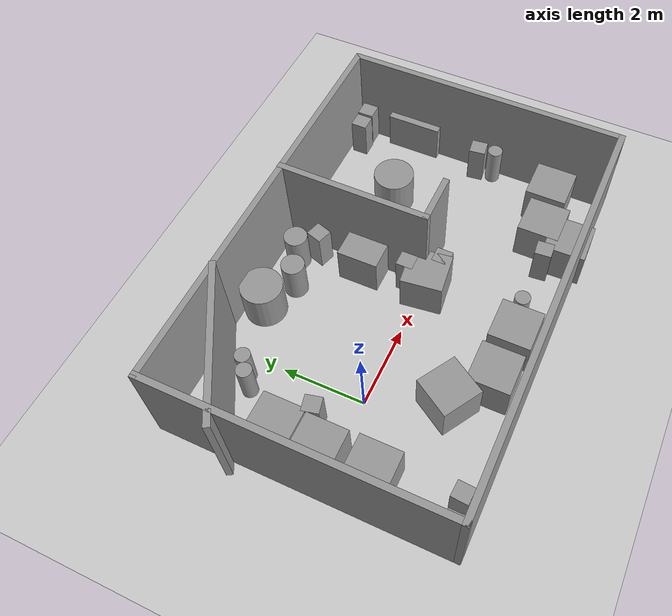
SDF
<sdf version="1.7">
 <world name="default">
  <light name="sun" type="directional">
   <pose>0 0 10 0 -0 0</pose>
   <diffuse>0.8 0.8 0.8 1</diffuse>
   <specular>0.2 0.2 0.2 1</specular>
   <attenuation>
    <range>1000</range>
    <constant>0.9</constant>
    <linear>0.01</linear>
    <quadratic>0.001</quadratic>
   </attenuation>
   <direction>-0.5 0.1 -0.9</direction>
   <spot><inner_angle>0</inner_angle><outer_angle>0</outer_angle><falloff>0</falloff></spot>
  </light>
  <model name="ground_plane">
   <static>1</static>
   <link name="link">
    <collision name="collision">
     <geometry><plane><normal>0 0 1</normal><size>100 100</size></plane></geometry>
     <surface>
      <contact><collide_bitmask>65535</collide_bitmask></contact>
      <friction><ode><mu>100</mu><mu2>50</mu2></ode></friction>
     </surface>
    </collision>
    <visual name="visual">
     <cast_shadows>0</cast_shadows>
     <geometry><plane><normal>0 0 1</normal><size>100 100</size></plane></geometry>
     <material>
      <script><uri>file://media/materials/scripts/gazebo.material</uri><name>Gazebo/Grey</name></script>
     </material>
    </visual>
   </link>
  </model>
  <gravity>0 0 -9.8</gravity>
  <magnetic_field>6e-06 2.3e-05 -4.2e-05</magnetic_field>
  <atmosphere type="adiabatic"/>
  <physics type="ode">
   <max_step_size>0.001</max_step_size>
   <real_time_factor>1</real_time_factor>
   <real_time_update_rate>1000</real_time_update_rate>
  </physics>
  <scene><ambient>0.4 0.4 0.4 1</ambient><background>0.7 0.7 0.7 1</background><shadows>1</shadows></scene>
  <spherical_coordinates>
   <surface_model>EARTH_WGS84</surface_model>
   <latitude_deg>0</latitude_deg>
   <longitude_deg>0</longitude_deg>
   <elevation>0</elevation>
   <heading_deg>0</heading_deg>
  </spherical_coordinates>
  <model name="Untitled">
   <pose>2.50168 0.287359 0 0 -0 0</pose>
   <link name="Wall_17">
    <collision name="Wall_17_Collision">
     <geometry><box><size>10 0.15 2.5</size></box></geometry>
     <pose>0 0 1.25 0 -0 0</pose>
    </collision>
    <visual name="Wall_17_Visual">
     <pose>0 0 1.25 0 -0 0</pose>
     <geometry><box><size>10 0.15 2.5</size></box></geometry>
     <material>
      <script><uri>file://media/materials/scripts/gazebo.material</uri><name>Gazebo/Grey</name></script>
      <ambient>1 1 1 1</ambient>
     </material>
     <meta><layer>0</layer></meta>
    </visual>
    <pose>0.158158 -3.43569 0 0 -0 0</pose>
   </link>
   <link name="Wall_20">
    <collision name="Wall_20_Collision">
     <geometry><box><size>7 0.15 2.5</size></box></geometry>
     <pose>0 0 1.25 0 -0 0</pose>
    </collision>
    <visual name="Wall_20_Visual">
     <pose>0 0 1.25 0 -0 0</pose>
     <geometry><box><size>7 0.15 2.5</size></box></geometry>
     <material>
      <script><uri>file://media/materials/scripts/gazebo.material</uri><name>Gazebo/Grey</name></script>
      <ambient>1 1 1 1</ambient>
     </material>
     <meta><layer>0</layer></meta>
    </visual>
    <pose>-4.76684 -0.010695 0 0 -0 1.5708</pose>
   </link>
   <link name="Wall_21">
    <collision name="Wall_21_Collision">
     <geometry><box><size>10 0.15 2.5</size></box></geometry>
     <pose>0 0 1.25 0 -0 0</pose>
    </collision>
    <visual name="Wall_21_Visual">
     <pose>0 0 1.25 0 -0 0</pose>
     <geometry><box><size>10 0.15 2.5</size></box></geometry>
     <material>
      <script><uri>file://media/materials/scripts/gazebo.material</uri><name>Gazebo/Grey</name></script>
      <ambient>1 1 1 1</ambient>
     </material>
     <meta><layer>0</layer></meta>
    </visual>
    <pose>0.158158 3.41431 0 0 -0 0</pose>
   </link>
   <link name="Wall_22">
    <collision name="Wall_22_Collision">
     <geometry><box><size>7 0.15 2.5</size></box></geometry>
     <pose>0 0 1.25 0 -0 0</pose>
    </collision>
    <visual name="Wall_22_Visual">
     <pose>0 0 1.25 0 -0 0</pose>
     <geometry><box><size>7 0.15 2.5</size></box></geometry>
     <material>
      <script><uri>file://media/materials/scripts/gazebo.material</uri><name>Gazebo/Grey</name></script>
      <ambient>1 1 1 1</ambient>
     </material>
     <meta><layer>0</layer></meta>
    </visual>
    <pose>5.08316 -0.010695 0 0 -0 -1.5708</pose>
   </link>
   <link name="Wall_27">
    <collision name="Wall_27_Collision">
     <geometry><box><size>3.75 0.15 2.5</size></box></geometry>
     <pose>0 0 1.25 0 -0 0</pose>
    </collision>
    <visual name="Wall_27_Visual">
     <pose>0 0 1.25 0 -0 0</pose>
     <geometry><box><size>3.75 0.15 2.5</size></box></geometry>
     <material>
      <script><uri>file://media/materials/scripts/gazebo.material</uri><name>Gazebo/Grey</name></script>
      <ambient>1 1 1 1</ambient>
     </material>
     <meta><layer>0</layer></meta>
    </visual>
    <pose>1.0429 1.62345 0 0 -0 -1.5708</pose>
   </link>
   <link name="Wall_28">
    <collision name="Wall_28_Collision">
     <geometry><box><size>1.25 0.15 2.5</size></box></geometry>
     <pose>0 0 1.25 0 -0 0</pose>
    </collision>
    <visual name="Wall_28_Visual">
     <pose>0 0 1.25 0 -0 0</pose>
     <geometry><box><size>1.25 0.15 2.5</size></box></geometry>
     <material>
      <script><uri>file://media/materials/scripts/gazebo.material</uri><name>Gazebo/Grey</name></script>
      <ambient>1 1 1 1</ambient>
     </material>
     <meta><layer>0</layer></meta>
    </visual>
    <pose>1.5929 -0.176548 0 0 -0 0</pose>
   </link>
   <link name="Wall_31">
    <collision name="Wall_31_Collision">
     <geometry><box><size>3.75 0.15 2.5</size></box></geometry>
     <pose>0 0 1.25 0 -0 0</pose>
    </collision>
    <visual name="Wall_31_Visual">
     <pose>0 0 1.25 0 -0 0</pose>
     <geometry><box><size>3.75 0.15 2.5</size></box></geometry>
     <material>
      <script><uri>file://media/materials/scripts/gazebo.material</uri><name>Gazebo/Grey</name></script>
      <ambient>1 1 1 1</ambient>
     </material>
     <meta><layer>0</layer></meta>
    </visual>
    <pose>-3.49686 2.50824 0 0 -0 -2.61799</pose>
   </link>
   <static>1</static>
  </model>
  <model name="unit_cylinder">
   <pose>5.54933 1.7972 0.499994 -3e-06 -2e-06 0</pose>
   <link name="link">
    <inertial>
     <mass>1</mass>
     <inertia><ixx>0.145833</ixx><ixy>0</ixy><ixz>0</ixz><iyy>0.145833</iyy><iyz>0</iyz><izz>0.125</izz></inertia>
    </inertial>
    <collision name="collision">
     <geometry><cylinder><radius>0.5</radius><length>1</length></cylinder></geometry>
    </collision>
    <visual name="visual">
     <geometry><cylinder><radius>0.5</radius><length>1</length></cylinder></geometry>
     <material>
      <script><name>Gazebo/Grey</name><uri>file://media/materials/scripts/gazebo.material</uri></script>
     </material>
    </visual>
   </link>
  </model>
  <model name="unit_box_0">
   <pose>-1.49088 1.31223 0.5 0 -0 5e-06</pose>
   <link name="link">
    <inertial>
     <mass>1</mass>
     <inertia>
      <ixx>0.166667</ixx>
      <ixy>0</ixy>
      <ixz>0</ixz>
      <iyy>0.166667</iyy>
      <iyz>0</iyz>
      <izz>0.166667</izz>
     </inertia>
    </inertial>
    <collision name="collision"><geometry><box><size>1 1 1</size></box></geometry></collision>
    <visual name="visual">
     <geometry><box><size>1 1 1</size></box></geometry>
     <material>
      <script><name>Gazebo/Grey</name><uri>file://media/materials/scripts/gazebo.material</uri></script>
     </material>
    </visual>
   </link>
  </model>
  <model name="unit_box_1">
   <pose>-1.54764 0.285463 0.499995 -1e-05 -0 2e-06</pose>
   <link name="link">
    <inertial>
     <mass>1</mass>
     <inertia>
      <ixx>0.166667</ixx>
      <ixy>0</ixy>
      <ixz>0</ixz>
      <iyy>0.166667</iyy>
      <iyz>0</iyz>
      <izz>0.166667</izz>
     </inertia>
    </inertial>
    <collision name="collision"><geometry><box><size>0.999999 1 1</size></box></geometry></collision>
    <visual name="visual">
     <geometry><box><size>0.999999 1 1</size></box></geometry>
     <material>
      <script><name>Gazebo/Grey</name><uri>file://media/materials/scripts/gazebo.material</uri></script>
     </material>
    </visual>
   </link>
  </model>
  <model name="unit_box_2">
   <pose>5.45674 -2.82159 0.49927 9e-06 0.000368 0.02352</pose>
   <link name="link">
    <inertial>
     <mass>1</mass>
     <inertia>
      <ixx>0.166667</ixx>
      <ixy>0</ixy>
      <ixz>0</ixz>
      <iyy>0.166667</iyy>
      <iyz>0</iyz>
      <izz>0.166667</izz>
     </inertia>
    </inertial>
    <collision name="collision"><geometry><box><size>0.999998 0.999997 1</size></box></geometry></collision>
    <visual name="visual">
     <geometry><box><size>0.999998 0.999997 1</size></box></geometry>
     <material>
      <script><name>Gazebo/Grey</name><uri>file://media/materials/scripts/gazebo.material</uri></script>
     </material>
    </visual>
   </link>
  </model>
  <model name="unit_cylinder_0">
   <pose>1.27187 3.17606 0.499999 1e-06 -1e-06 0</pose>
   <link name="link">
    <inertial>
     <mass>1</mass>
     <inertia><ixx>0.145833</ixx><ixy>0</ixy><ixz>0</ixz><iyy>0.145833</iyy><iyz>0</iyz><izz>0.125</izz></inertia>
    </inertial>
    <collision name="collision">
     <geometry><cylinder><radius>0.5</radius><length>1</length></cylinder></geometry>
    </collision>
    <visual name="visual">
     <geometry><cylinder><radius>0.5</radius><length>1</length></cylinder></geometry>
     <material>
      <script><name>Gazebo/Grey</name><uri>file://media/materials/scripts/gazebo.material</uri></script>
     </material>
    </visual>
   </link>
  </model>
  <model name="unit_box_3">
   <pose>3.24514 -0.082901 0.499999 -4e-06 -3e-06 0.12067</pose>
   <link name="link">
    <inertial>
     <mass>1</mass>
     <inertia>
      <ixx>0.166667</ixx>
      <ixy>0</ixy>
      <ixz>0</ixz>
      <iyy>0.166667</iyy>
      <iyz>0</iyz>
      <izz>0.166667</izz>
     </inertia>
    </inertial>
    <collision name="collision"><geometry><box><size>0.999999 0.999999 1</size></box></geometry></collision>
    <visual name="visual">
     <geometry><box><size>0.999999 0.999999 1</size></box></geometry>
     <material>
      <script><name>Gazebo/Grey</name><uri>file://media/materials/scripts/gazebo.material</uri></script>
     </material>
    </visual>
   </link>
  </model>
  <model name="unit_cylinder_0_clone">
   <pose>2.08333 2.80261 0.499997 1e-06 1e-06 0</pose>
   <link name="link">
    <inertial>
     <mass>1</mass>
     <inertia><ixx>0.145833</ixx><ixy>0</ixy><ixz>0</ixz><iyy>0.145833</iyy><iyz>0</iyz><izz>0.125</izz></inertia>
    </inertial>
    <collision name="collision">
     <geometry><cylinder><radius>0.28302</radius><length>1</length></cylinder></geometry>
    </collision>
    <visual name="visual">
     <geometry><cylinder><radius>0.28302</radius><length>1</length></cylinder></geometry>
     <material>
      <script><name>Gazebo/Grey</name><uri>file://media/materials/scripts/gazebo.material</uri></script>
     </material>
    </visual>
   </link>
  </model>
  <model name="unit_cylinder_0_clone_0">
   <pose>2.82257 3.12639 0.499999 0 -1e-06 0</pose>
   <link name="link">
    <inertial>
     <mass>1</mass>
     <inertia><ixx>0.145833</ixx><ixy>0</ixy><ixz>0</ixz><iyy>0.145833</iyy><iyz>0</iyz><izz>0.125</izz></inertia>
    </inertial>
    <collision name="collision">
     <geometry><cylinder><radius>0.28302</radius><length>1</length></cylinder></geometry>
    </collision>
    <visual name="visual">
     <geometry><cylinder><radius>0.28302</radius><length>1</length></cylinder></geometry>
     <material>
      <script><name>Gazebo/Grey</name><uri>file://media/materials/scripts/gazebo.material</uri></script>
     </material>
    </visual>
   </link>
  </model>
  <model name="unit_box">
   <pose>-1.51448 -0.926277 0.5 0 -0 0</pose>
   <link name="link">
    <inertial>
     <mass>1</mass>
     <inertia>
      <ixx>0.166667</ixx>
      <ixy>0</ixy>
      <ixz>0</ixz>
      <iyy>0.166667</iyy>
      <iyz>0</iyz>
      <izz>0.166667</izz>
     </inertia>
    </inertial>
    <collision name="collision"><geometry><box><size>1 0.999998 1</size></box></geometry></collision>
    <visual name="visual">
     <geometry><box><size>1 0.999998 1</size></box></geometry>
     <material>
      <script><name>Gazebo/Grey</name><uri>file://media/materials/scripts/gazebo.material</uri></script>
     </material>
    </visual>
   </link>
  </model>
  <model name="unit_box_4">
   <pose>6.88675 -1.89979 0.499995 0 -1e-05 0</pose>
   <link name="link">
    <inertial>
     <mass>1</mass>
     <inertia>
      <ixx>0.166667</ixx>
      <ixy>0</ixy>
      <ixz>0</ixz>
      <iyy>0.166667</iyy>
      <iyz>0</iyz>
      <izz>0.166667</izz>
     </inertia>
    </inertial>
    <collision name="collision"><geometry><box><size>1 0.999998 1</size></box></geometry></collision>
    <visual name="visual">
     <geometry><box><size>1 0.999998 1</size></box></geometry>
     <material>
      <script><name>Gazebo/Grey</name><uri>file://media/materials/scripts/gazebo.material</uri></script>
     </material>
    </visual>
   </link>
  </model>
  <model name="unit_box_5">
   <pose>5.74417 -2.0897 0.5 0 -0 3.2e-05</pose>
   <link name="link">
    <inertial>
     <mass>1</mass>
     <inertia>
      <ixx>0.166667</ixx>
      <ixy>0</ixy>
      <ixz>0</ixz>
      <iyy>0.166667</iyy>
      <iyz>0</iyz>
      <izz>0.166667</izz>
     </inertia>
    </inertial>
    <collision name="collision"><geometry><box><size>1 1 1</size></box></geometry></collision>
    <visual name="visual">
     <geometry><box><size>1 1 1</size></box></geometry>
     <material>
      <script><name>Gazebo/Grey</name><uri>file://media/materials/scripts/gazebo.material</uri></script>
     </material>
    </visual>
   </link>
  </model>
  <model name="unit_box_6">
   <pose>2.70314 -2.46942 0.499995 1e-05 -0 0</pose>
   <link name="link">
    <inertial>
     <mass>1</mass>
     <inertia>
      <ixx>0.166667</ixx>
      <ixy>0</ixy>
      <ixz>0</ixz>
      <iyy>0.166667</iyy>
      <iyz>0</iyz>
      <izz>0.166667</izz>
     </inertia>
    </inertial>
    <collision name="collision"><geometry><box><size>1 1 1</size></box></geometry></collision>
    <visual name="visual">
     <geometry><box><size>1 1 1</size></box></geometry>
     <material>
      <script><name>Gazebo/Grey</name><uri>file://media/materials/scripts/gazebo.material</uri></script>
     </material>
    </visual>
   </link>
  </model>
  <model name="unit_box_7">
   <pose>1.51914 -2.43077 0.5 0 -0 1e-05</pose>
   <link name="link">
    <inertial>
     <mass>1</mass>
     <inertia>
      <ixx>0.166667</ixx>
      <ixy>0</ixy>
      <ixz>0</ixz>
      <iyy>0.166667</iyy>
      <iyz>0</iyz>
      <izz>0.166667</izz>
     </inertia>
    </inertial>
    <collision name="collision"><geometry><box><size>1 0.999998 1</size></box></geometry></collision>
    <visual name="visual">
     <geometry><box><size>1 0.999998 1</size></box></geometry>
     <material>
      <script><name>Gazebo/Grey</name><uri>file://media/materials/scripts/gazebo.material</uri></script>
     </material>
    </visual>
   </link>
  </model>
  <model name="unit_box_8">
   <pose>0.706155 -1.69152 0.5 0 -0 -0.548094</pose>
   <link name="link">
    <inertial>
     <mass>1</mass>
     <inertia>
      <ixx>0.166667</ixx>
      <ixy>0</ixy>
      <ixz>0</ixz>
      <iyy>0.166667</iyy>
      <iyz>0</iyz>
      <izz>0.166667</izz>
     </inertia>
    </inertial>
    <collision name="collision"><geometry><box><size>1 1 1</size></box></geometry></collision>
    <visual name="visual">
     <geometry><box><size>1 1 1</size></box></geometry>
     <material>
      <script><name>Gazebo/Grey</name><uri>file://media/materials/scripts/gazebo.material</uri></script>
     </material>
    </visual>
   </link>
  </model>
  <model name="unit_box_3_clone">
   <pose>3.27733 0.432388 0.5 0 -0 -4e-06</pose>
   <link name="link">
    <inertial>
     <mass>1</mass>
     <inertia>
      <ixx>0.166667</ixx>
      <ixy>0</ixy>
      <ixz>0</ixz>
      <iyy>0.166667</iyy>
      <iyz>0</iyz>
      <izz>0.166667</izz>
     </inertia>
    </inertial>
    <collision name="collision"><geometry><box><size>0.384482 0.401706 1</size></box></geometry></collision>
    <visual name="visual">
     <geometry><box><size>0.384482 0.401706 1</size></box></geometry>
     <material>
      <script><name>Gazebo/Grey</name><uri>file://media/materials/scripts/gazebo.material</uri></script>
     </material>
    </visual>
   </link>
  </model>
  <model name="unit_box_3_clone_0">
   <pose>-1.88133 -2.84073 0.500001 2e-06 -1e-06 0.00017</pose>
   <link name="link">
    <inertial>
     <mass>1</mass>
     <inertia>
      <ixx>0.166667</ixx>
      <ixy>0</ixy>
      <ixz>0</ixz>
      <iyy>0.166667</iyy>
      <iyz>0</iyz>
      <izz>0.166667</izz>
     </inertia>
    </inertial>
    <collision name="collision"><geometry><box><size>0.384482 0.401706 1</size></box></geometry></collision>
    <visual name="visual">
     <geometry><box><size>0.384482 0.401706 1</size></box></geometry>
     <material>
      <script><name>Gazebo/Grey</name><uri>file://media/materials/scripts/gazebo.material</uri></script>
     </material>
    </visual>
   </link>
  </model>
  <model name="unit_box_3_clone_1">
   <pose>3.15 2.67126 0.500001 -2e-06 -1e-06 -0.30349</pose>
   <link name="link">
    <inertial>
     <mass>1</mass>
     <inertia>
      <ixx>0.166667</ixx>
      <ixy>0</ixy>
      <ixz>0</ixz>
      <iyy>0.166667</iyy>
      <iyz>0</iyz>
      <izz>0.166667</izz>
     </inertia>
    </inertial>
    <collision name="collision"><geometry><box><size>0.384482 0.401706 1</size></box></geometry></collision>
    <visual name="visual">
     <geometry><box><size>0.384482 0.401706 1</size></box></geometry>
     <material>
      <script><name>Gazebo/Grey</name><uri>file://media/materials/scripts/gazebo.material</uri></script>
     </material>
    </visual>
   </link>
  </model>
  <model name="unit_box_3_clone_2">
   <pose>4.90012 -2.38677 0.499999 2e-06 -3e-06 0.079478</pose>
   <link name="link">
    <inertial>
     <mass>1</mass>
     <inertia>
      <ixx>0.166667</ixx>
      <ixy>0</ixy>
      <ixz>0</ixz>
      <iyy>0.166667</iyy>
      <iyz>0</iyz>
      <izz>0.166667</izz>
     </inertia>
    </inertial>
    <collision name="collision"><geometry><box><size>0.384482 0.401706 1</size></box></geometry></collision>
    <visual name="visual">
     <geometry><box><size>0.384482 0.401706 1</size></box></geometry>
     <material>
      <script><name>Gazebo/Grey</name><uri>file://media/materials/scripts/gazebo.material</uri></script>
     </material>
    </visual>
   </link>
  </model>
  <model name="unit_box_3_clone_3">
   <pose>3.71912 -0.279151 0.500001 -1e-06 -2e-06 0.000185</pose>
   <link name="link">
    <inertial>
     <mass>1</mass>
     <inertia>
      <ixx>0.166667</ixx>
      <ixy>0</ixy>
      <ixz>0</ixz>
      <iyy>0.166667</iyy>
      <iyz>0</iyz>
      <izz>0.166667</izz>
     </inertia>
    </inertial>
    <collision name="collision"><geometry><box><size>0.384482 0.401706 1</size></box></geometry></collision>
    <visual name="visual">
     <geometry><box><size>0.384482 0.401706 1</size></box></geometry>
     <material>
      <script><name>Gazebo/Grey</name><uri>file://media/materials/scripts/gazebo.material</uri></script>
     </material>
    </visual>
   </link>
  </model>
  <model name="unit_box_3_clone_4">
   <pose>7.31761 3.3532 0.5 -0 -0 -4e-06</pose>
   <link name="link">
    <inertial>
     <mass>1</mass>
     <inertia>
      <ixx>0.166667</ixx>
      <ixy>0</ixy>
      <ixz>0</ixz>
      <iyy>0.166667</iyy>
      <iyz>0</iyz>
      <izz>0.166667</izz>
     </inertia>
    </inertial>
    <collision name="collision"><geometry><box><size>0.384482 0.401706 1</size></box></geometry></collision>
    <visual name="visual">
     <geometry><box><size>0.384482 0.401706 1</size></box></geometry>
     <material>
      <script><name>Gazebo/Grey</name><uri>file://media/materials/scripts/gazebo.material</uri></script>
     </material>
    </visual>
   </link>
  </model>
  <model name="unit_box_3_clone_5">
   <pose>6.87125 3.33086 0.500001 0 3e-06 0.000114</pose>
   <link name="link">
    <inertial>
     <mass>1</mass>
     <inertia>
      <ixx>0.166667</ixx>
      <ixy>0</ixy>
      <ixz>0</ixz>
      <iyy>0.166667</iyy>
      <iyz>0</iyz>
      <izz>0.166667</izz>
     </inertia>
    </inertial>
    <collision name="collision"><geometry><box><size>0.384482 0.401706 1</size></box></geometry></collision>
    <visual name="visual">
     <geometry><box><size>0.384482 0.401706 1</size></box></geometry>
     <material>
      <script><name>Gazebo/Grey</name><uri>file://media/materials/scripts/gazebo.material</uri></script>
     </material>
    </visual>
   </link>
  </model>
  <model name="unit_box_3_clone_6">
   <pose>3.92967 3.18179 0.499997 6e-06 -4e-06 0.000206</pose>
   <link name="link">
    <inertial>
     <mass>1</mass>
     <inertia>
      <ixx>0.166667</ixx>
      <ixy>0</ixy>
      <ixz>0</ixz>
      <iyy>0.166667</iyy>
      <iyz>0</iyz>
      <izz>0.166667</izz>
     </inertia>
    </inertial>
    <collision name="collision"><geometry><box><size>0.384482 0.401705 1</size></box></geometry></collision>
    <visual name="visual">
     <geometry><box><size>0.384482 0.401705 1</size></box></geometry>
     <material>
      <script><name>Gazebo/Grey</name><uri>file://media/materials/scripts/gazebo.material</uri></script>
     </material>
    </visual>
   </link>
  </model>
  <model name="unit_box_3_clone_7">
   <pose>-0.848155 0.755717 0.500001 2e-06 -1e-06 0.227242</pose>
   <link name="link">
    <inertial>
     <mass>1</mass>
     <inertia>
      <ixx>0.166667</ixx>
      <ixy>0</ixy>
      <ixz>0</ixz>
      <iyy>0.166667</iyy>
      <iyz>0</iyz>
      <izz>0.166667</izz>
     </inertia>
    </inertial>
    <collision name="collision"><geometry><box><size>0.384482 0.401706 1</size></box></geometry></collision>
    <visual name="visual">
     <geometry><box><size>0.384482 0.401706 1</size></box></geometry>
     <material>
      <script><name>Gazebo/Grey</name><uri>file://media/materials/scripts/gazebo.material</uri></script>
     </material>
    </visual>
   </link>
  </model>
  <model name="unit_box_3_clone_8">
   <pose>-1.29011 -2.79685 0.500001 -0 -3e-06 -0.060232</pose>
   <link name="link">
    <inertial>
     <mass>1</mass>
     <inertia>
      <ixx>0.166667</ixx>
      <ixy>0</ixy>
      <ixz>0</ixz>
      <iyy>0.166667</iyy>
      <iyz>0</iyz>
      <izz>0.166667</izz>
     </inertia>
    </inertial>
    <collision name="collision"><geometry><box><size>0.384482 0.401706 1</size></box></geometry></collision>
    <visual name="visual">
     <geometry><box><size>0.384482 0.401706 1</size></box></geometry>
     <material>
      <script><name>Gazebo/Grey</name><uri>file://media/materials/scripts/gazebo.material</uri></script>
     </material>
    </visual>
   </link>
  </model>
  <model name="unit_box_3_clone_9">
   <pose>7.27176 0.185361 0.499999 4e-06 -2e-06 0.120566</pose>
   <link name="link">
    <inertial>
     <mass>1</mass>
     <inertia>
      <ixx>0.166667</ixx>
      <ixy>0</ixy>
      <ixz>0</ixz>
      <iyy>0.166667</iyy>
      <iyz>0</iyz>
      <izz>0.166667</izz>
     </inertia>
    </inertial>
    <collision name="collision"><geometry><box><size>0.384482 0.401706 1</size></box></geometry></collision>
    <visual name="visual">
     <geometry><box><size>0.384482 0.401706 1</size></box></geometry>
     <material>
      <script><name>Gazebo/Grey</name><uri>file://media/materials/scripts/gazebo.material</uri></script>
     </material>
    </visual>
   </link>
  </model>
  <model name="unit_cylinder_0_clone_1">
   <pose>4.32524 0.437579 0.499999 0 0 -9e-06</pose>
   <link name="link">
    <inertial>
     <mass>1</mass>
     <inertia><ixx>0.145833</ixx><ixy>0</ixy><ixz>0</ixz><iyy>0.145833</iyy><iyz>0</iyz><izz>0.125</izz></inertia>
    </inertial>
    <collision name="collision">
     <geometry><cylinder><radius>0.283019</radius><length>1</length></cylinder></geometry>
    </collision>
    <visual name="visual">
     <geometry><cylinder><radius>0.283019</radius><length>1</length></cylinder></geometry>
     <material>
      <script><name>Gazebo/Grey</name><uri>file://media/materials/scripts/gazebo.material</uri></script>
     </material>
    </visual>
   </link>
  </model>
  <model name="unit_cylinder_0_clone_1_clone">
   <pose>3.84048 0.451891 0.499999 0 -0 7e-06</pose>
   <link name="link">
    <inertial>
     <mass>1</mass>
     <inertia><ixx>0.145833</ixx><ixy>0</ixy><ixz>0</ixz><iyy>0.145833</iyy><iyz>0</iyz><izz>0.125</izz></inertia>
    </inertial>
    <collision name="collision">
     <geometry><cylinder><radius>0.183711</radius><length>1</length></cylinder></geometry>
    </collision>
    <visual name="visual">
     <geometry><cylinder><radius>0.183711</radius><length>1</length></cylinder></geometry>
     <material>
      <script><name>Gazebo/Grey</name><uri>file://media/materials/scripts/gazebo.material</uri></script>
     </material>
    </visual>
   </link>
  </model>
  <model name="unit_cylinder_0_clone_1_clone_0">
   <pose>3.41412 -2.36565 0.499999 0 -0 7e-06</pose>
   <link name="link">
    <inertial>
     <mass>1</mass>
     <inertia><ixx>0.145833</ixx><ixy>0</ixy><ixz>0</ixz><iyy>0.145833</iyy><iyz>0</iyz><izz>0.125</izz></inertia>
    </inertial>
    <collision name="collision">
     <geometry><cylinder><radius>0.183711</radius><length>1</length></cylinder></geometry>
    </collision>
    <visual name="visual">
     <geometry><cylinder><radius>0.183711</radius><length>1</length></cylinder></geometry>
     <material>
      <script><name>Gazebo/Grey</name><uri>file://media/materials/scripts/gazebo.material</uri></script>
     </material>
    </visual>
   </link>
  </model>
  <model name="unit_cylinder_0_clone_1_clone_1">
   <pose>7.32613 -0.249613 0.5 0 -0 3.4e-05</pose>
   <link name="link">
    <inertial>
     <mass>1</mass>
     <inertia><ixx>0.145833</ixx><ixy>0</ixy><ixz>0</ixz><iyy>0.145833</iyy><iyz>0</iyz><izz>0.125</izz></inertia>
    </inertial>
    <collision name="collision">
     <geometry><cylinder><radius>0.183711</radius><length>1</length></cylinder></geometry>
    </collision>
    <visual name="visual">
     <geometry><cylinder><radius>0.183711</radius><length>1</length></cylinder></geometry>
     <material>
      <script><name>Gazebo/Grey</name><uri>file://media/materials/scripts/gazebo.material</uri></script>
     </material>
    </visual>
   </link>
  </model>
  <model name="unit_cylinder_0_clone_1_clone_2">
   <pose>-0.446977 2.65804 0.499999 0 -0 8e-06</pose>
   <link name="link">
    <inertial>
     <mass>1</mass>
     <inertia><ixx>0.145833</ixx><ixy>0</ixy><ixz>0</ixz><iyy>0.145833</iyy><iyz>0</iyz><izz>0.125</izz></inertia>
    </inertial>
    <collision name="collision">
     <geometry><cylinder><radius>0.183711</radius><length>1</length></cylinder></geometry>
    </collision>
    <visual name="visual">
     <geometry><cylinder><radius>0.183711</radius><length>1</length></cylinder></geometry>
     <material>
      <script><name>Gazebo/Grey</name><uri>file://media/materials/scripts/gazebo.material</uri></script>
     </material>
    </visual>
   </link>
  </model>
  <model name="unit_cylinder_0_clone_1_clone_3">
   <pose>-0.746516 2.44519 0.499992 0 -0 8e-06</pose>
   <link name="link">
    <inertial>
     <mass>1</mass>
     <inertia><ixx>0.145833</ixx><ixy>0</ixy><ixz>0</ixz><iyy>0.145833</iyy><iyz>0</iyz><izz>0.125</izz></inertia>
    </inertial>
    <collision name="collision">
     <geometry><cylinder><radius>0.183711</radius><length>1</length></cylinder></geometry>
    </collision>
    <visual name="visual">
     <geometry><cylinder><radius>0.183711</radius><length>1</length></cylinder></geometry>
     <material>
      <script><name>Gazebo/Grey</name><uri>file://media/materials/scripts/gazebo.material</uri></script>
     </material>
    </visual>
   </link>
  </model>
  <model name="unit_box_3_clone_10">
   <pose>4.36212 3.38485 0.500001 0 2e-06 0.120622</pose>
   <link name="link">
    <inertial>
     <mass>1</mass>
     <inertia>
      <ixx>0.166667</ixx>
      <ixy>0</ixy>
      <ixz>0</ixz>
      <iyy>0.166667</iyy>
      <iyz>0</iyz>
      <izz>0.166667</izz>
     </inertia>
    </inertial>
    <collision name="collision"><geometry><box><size>0.384482 0.401706 1</size></box></geometry></collision>
    <visual name="visual">
     <geometry><box><size>0.384482 0.401706 1</size></box></geometry>
     <material>
      <script><name>Gazebo/Grey</name><uri>file://media/materials/scripts/gazebo.material</uri></script>
     </material>
    </visual>
   </link>
  </model>
  <model name="unit_box_9">
   <pose>3.30445 1.51034 0.499999 1e-06 0 0.003732</pose>
   <link name="link">
    <inertial>
     <mass>1</mass>
     <inertia>
      <ixx>0.166667</ixx>
      <ixy>0</ixy>
      <ixz>0</ixz>
      <iyy>0.166667</iyy>
      <iyz>0</iyz>
      <izz>0.166667</izz>
     </inertia>
    </inertial>
    <collision name="collision"><geometry><box><size>0.999996 0.999998 1</size></box></geometry></collision>
    <visual name="visual">
     <geometry><box><size>0.999996 0.999998 1</size></box></geometry>
     <material>
      <script><name>Gazebo/Grey</name><uri>file://media/materials/scripts/gazebo.material</uri></script>
     </material>
    </visual>
   </link>
  </model>
  <model name="unit_box_9_clone">
   <pose>7.43206 2.04136 0.5 0 -0 0.000116</pose>
   <link name="link">
    <inertial>
     <mass>1</mass>
     <inertia>
      <ixx>0.166667</ixx>
      <ixy>0</ixy>
      <ixz>0</ixz>
      <iyy>0.166667</iyy>
      <iyz>0</iyz>
      <izz>0.166667</izz>
     </inertia>
    </inertial>
    <collision name="collision"><geometry><box><size>0.212498 1.37365 1</size></box></geometry></collision>
    <visual name="visual">
     <geometry><box><size>0.212498 1.37365 1</size></box></geometry>
     <material>
      <script><name>Gazebo/Grey</name><uri>file://media/materials/scripts/gazebo.material</uri></script>
     </material>
    </visual>
   </link>
  </model>
  <model name="unit_box_9_clone_0">
   <pose>3.67118 2.12747 0.499994 -8e-06 -0 -2e-06</pose>
   <link name="link">
    <inertial>
     <mass>1</mass>
     <inertia>
      <ixx>0.166667</ixx>
      <ixy>0</ixy>
      <ixz>0</ixz>
      <iyy>0.166667</iyy>
      <iyz>0</iyz>
      <izz>0.166667</izz>
     </inertia>
    </inertial>
    <collision name="collision"><geometry><box><size>0.212498 1.37365 1</size></box></geometry></collision>
    <visual name="visual">
     <geometry><box><size>0.212498 1.37365 1</size></box></geometry>
     <material>
      <script><name>Gazebo/Grey</name><uri>file://media/materials/scripts/gazebo.material</uri></script>
     </material>
    </visual>
   </link>
  </model>
 </world>
</sdf>
